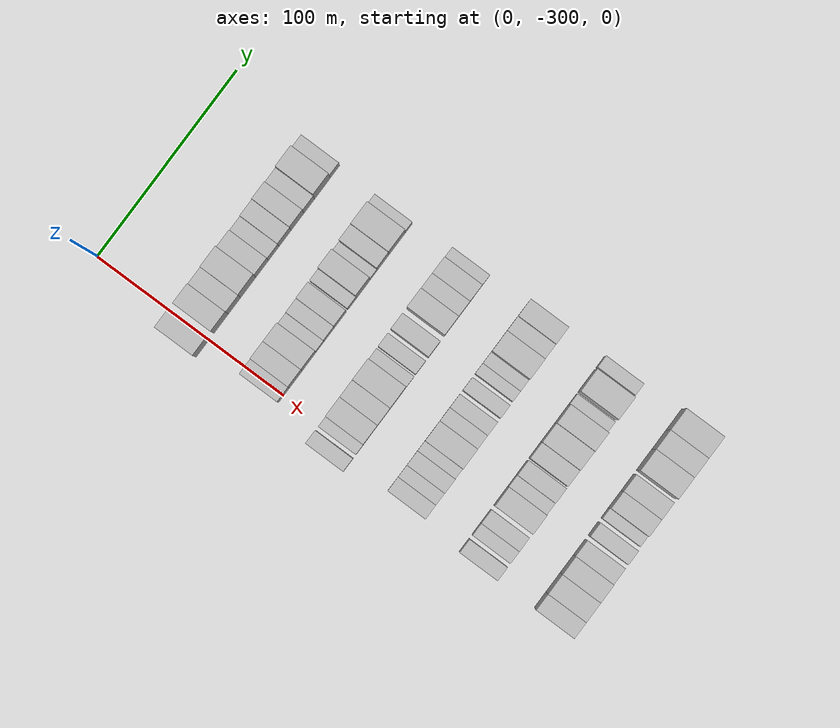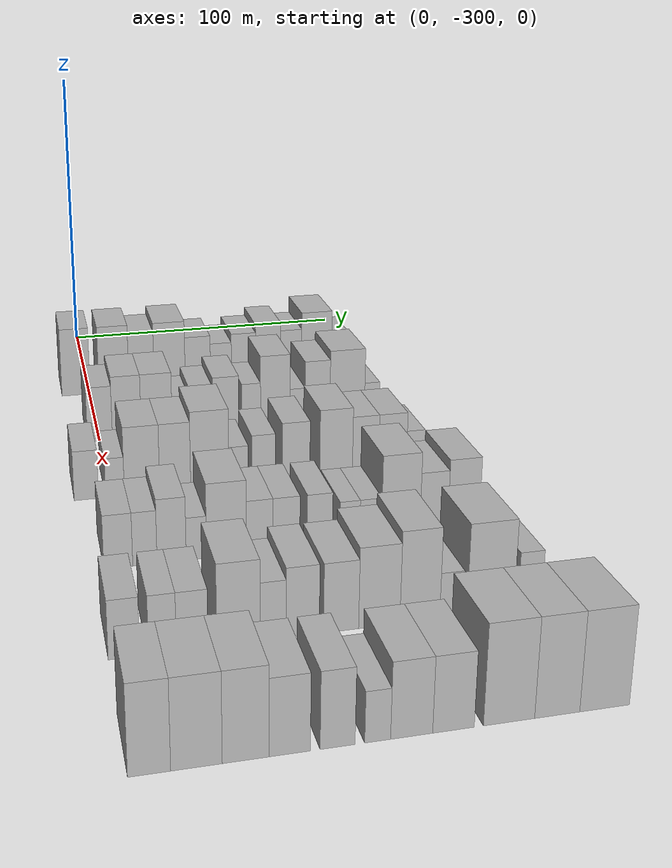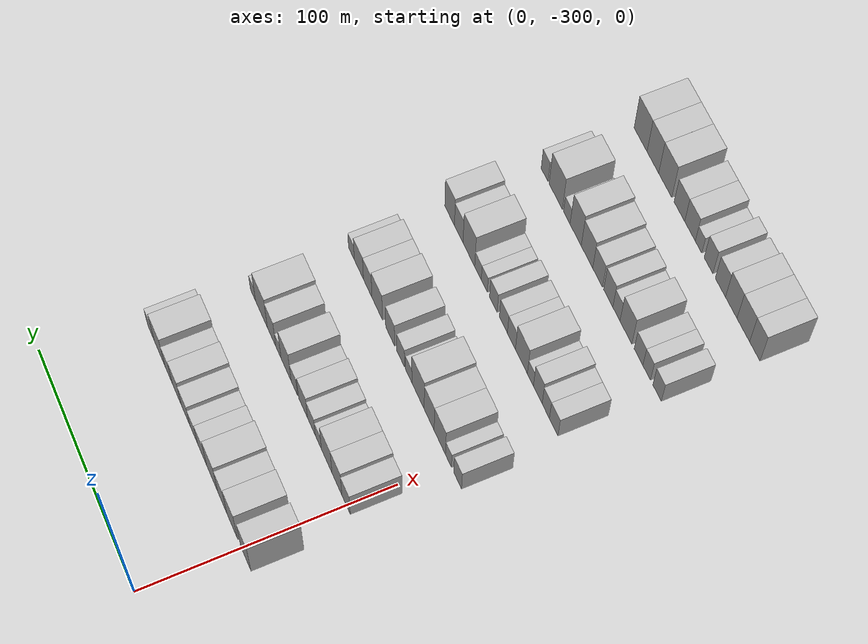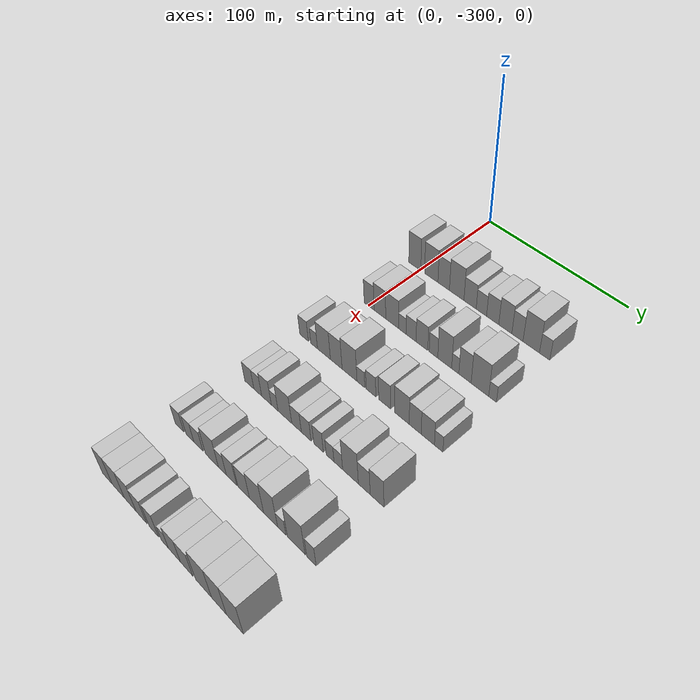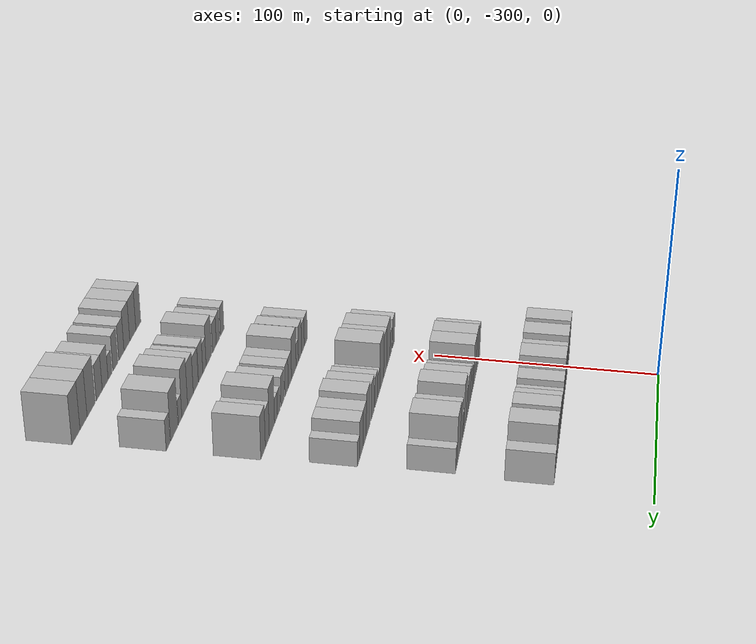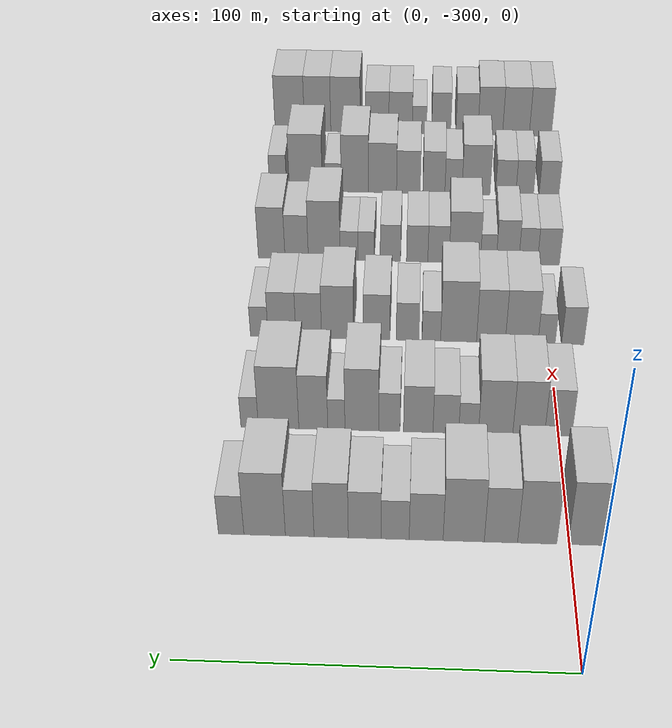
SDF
<sdf version="1.6">
 <world name="default">
  <model name="building_38">
   <static>1</static>
   <pose>50.0000 -304.3911 0 0.000000 0.000000 0.000000</pose>
   <link name="link">
    <pose>0 0 12.00 0 0 0</pose>
    <collision name="collision"><geometry><box><size>20.0000 9.6716 24.0000</size></box></geometry></collision>
    <visual name="visual">
     <cast_shadows>0</cast_shadows>
     <geometry><box><size>20.0000 9.6716 24.0000</size></box></geometry>
     <material>
      <script>
       <uri>model://HANNAS_wall/materials/scripts</uri>
       <uri>model://HANNAS_wall/materials/textures</uri>
       <name>vrc/HANNAS_wall</name>
      </script>
     </material>
    </visual>
   </link>
  </model>
  <model name="building_39">
   <static>1</static>
   <pose>50.0000 -291.3712 0 0.000000 0.000000 0.000000</pose>
   <link name="link">
    <pose>0 0 12.00 0 0 0</pose>
    <collision name="collision"><geometry><box><size>20.0000 10.3682 24.0000</size></box></geometry></collision>
    <visual name="visual">
     <cast_shadows>0</cast_shadows>
     <geometry><box><size>20.0000 10.3682 24.0000</size></box></geometry>
     <material>
      <script>
       <uri>model://HANNAS_wall/materials/scripts</uri>
       <uri>model://HANNAS_wall/materials/textures</uri>
       <name>vrc/HANNAS_wall</name>
      </script>
     </material>
    </visual>
   </link>
  </model>
  <model name="building_40">
   <static>1</static>
   <pose>50.0000 -281.7847 0 0.000000 0.000000 0.000000</pose>
   <link name="link">
    <pose>0 0 10.50 0 0 0</pose>
    <collision name="collision"><geometry><box><size>20.0000 8.8048 21.0000</size></box></geometry></collision>
    <visual name="visual">
     <cast_shadows>0</cast_shadows>
     <geometry><box><size>20.0000 8.8048 21.0000</size></box></geometry>
     <material>
      <script>
       <uri>model://HANNAS_wall/materials/scripts</uri>
       <uri>model://HANNAS_wall/materials/textures</uri>
       <name>vrc/HANNAS_wall</name>
      </script>
     </material>
    </visual>
   </link>
  </model>
  <model name="building_41">
   <static>1</static>
   <pose>50.0000 -271.9253 0 0.000000 0.000000 0.000000</pose>
   <link name="link">
    <pose>0 0 12.00 0 0 0</pose>
    <collision name="collision"><geometry><box><size>20.0000 10.9142 24.0000</size></box></geometry></collision>
    <visual name="visual">
     <cast_shadows>0</cast_shadows>
     <geometry><box><size>20.0000 10.9142 24.0000</size></box></geometry>
     <material>
      <script>
       <uri>model://HANNAS_wall/materials/scripts</uri>
       <uri>model://HANNAS_wall/materials/textures</uri>
       <name>vrc/HANNAS_wall</name>
      </script>
     </material>
    </visual>
   </link>
  </model>
  <model name="building_42">
   <static>1</static>
   <pose>50.0000 -261.9698 0 0.000000 0.000000 0.000000</pose>
   <link name="link">
    <pose>0 0 9.00 0 0 0</pose>
    <collision name="collision"><geometry><box><size>20.0000 8.9967 18.0000</size></box></geometry></collision>
    <visual name="visual">
     <cast_shadows>0</cast_shadows>
     <geometry><box><size>20.0000 8.9967 18.0000</size></box></geometry>
     <material>
      <script>
       <uri>model://HANNAS_wall/materials/scripts</uri>
       <uri>model://HANNAS_wall/materials/textures</uri>
       <name>vrc/HANNAS_wall</name>
      </script>
     </material>
    </visual>
   </link>
  </model>
  <model name="building_43">
   <static>1</static>
   <pose>50.0000 -253.7256 0 0.000000 0.000000 0.000000</pose>
   <link name="link">
    <pose>0 0 7.50 0 0 0</pose>
    <collision name="collision"><geometry><box><size>20.0000 7.4918 15.0000</size></box></geometry></collision>
    <visual name="visual">
     <cast_shadows>0</cast_shadows>
     <geometry><box><size>20.0000 7.4918 15.0000</size></box></geometry>
     <material>
      <script>
       <uri>model://HANNAS_wall/materials/scripts</uri>
       <uri>model://HANNAS_wall/materials/textures</uri>
       <name>vrc/HANNAS_wall</name>
      </script>
     </material>
    </visual>
   </link>
  </model>
  <model name="building_44">
   <static>1</static>
   <pose>50.0000 -245.6407 0 0.000000 0.000000 0.000000</pose>
   <link name="link">
    <pose>0 0 9.00 0 0 0</pose>
    <collision name="collision"><geometry><box><size>20.0000 8.6780 18.0000</size></box></geometry></collision>
    <visual name="visual">
     <cast_shadows>0</cast_shadows>
     <geometry><box><size>20.0000 8.6780 18.0000</size></box></geometry>
     <material>
      <script>
       <uri>model://HANNAS_wall/materials/scripts</uri>
       <uri>model://HANNAS_wall/materials/textures</uri>
       <name>vrc/HANNAS_wall</name>
      </script>
     </material>
    </visual>
   </link>
  </model>
  <model name="building_45">
   <static>1</static>
   <pose>50.0000 -236.7338 0 0.000000 0.000000 0.000000</pose>
   <link name="link">
    <pose>0 0 10.50 0 0 0</pose>
    <collision name="collision"><geometry><box><size>20.0000 9.1357 21.0000</size></box></geometry></collision>
    <visual name="visual">
     <cast_shadows>0</cast_shadows>
     <geometry><box><size>20.0000 9.1357 21.0000</size></box></geometry>
     <material>
      <script>
       <uri>model://HANNAS_wall/materials/scripts</uri>
       <uri>model://HANNAS_wall/materials/textures</uri>
       <name>vrc/HANNAS_wall</name>
      </script>
     </material>
    </visual>
   </link>
  </model>
  <model name="building_46">
   <static>1</static>
   <pose>50.0000 -228.3453 0 0.000000 0.000000 0.000000</pose>
   <link name="link">
    <pose>0 0 9.00 0 0 0</pose>
    <collision name="collision"><geometry><box><size>20.0000 7.6412 18.0000</size></box></geometry></collision>
    <visual name="visual">
     <cast_shadows>0</cast_shadows>
     <geometry><box><size>20.0000 7.6412 18.0000</size></box></geometry>
     <material>
      <script>
       <uri>model://HANNAS_wall/materials/scripts</uri>
       <uri>model://HANNAS_wall/materials/textures</uri>
       <name>vrc/HANNAS_wall</name>
      </script>
     </material>
    </visual>
   </link>
  </model>
  <model name="building_47">
   <static>1</static>
   <pose>50.0000 -218.9849 0 0.000000 0.000000 0.000000</pose>
   <link name="link">
    <pose>0 0 12.00 0 0 0</pose>
    <collision name="collision"><geometry><box><size>20.0000 11.0797 24.0000</size></box></geometry></collision>
    <visual name="visual">
     <cast_shadows>0</cast_shadows>
     <geometry><box><size>20.0000 11.0797 24.0000</size></box></geometry>
     <material>
      <script>
       <uri>model://HANNAS_wall/materials/scripts</uri>
       <uri>model://HANNAS_wall/materials/textures</uri>
       <name>vrc/HANNAS_wall</name>
      </script>
     </material>
    </visual>
   </link>
  </model>
  <model name="building_48">
   <static>1</static>
   <pose>50.0000 -210.0393 0 0.000000 0.000000 0.000000</pose>
   <link name="link">
    <pose>0 0 7.50 0 0 0</pose>
    <collision name="collision"><geometry><box><size>20.0000 6.8115 15.0000</size></box></geometry></collision>
    <visual name="visual">
     <cast_shadows>0</cast_shadows>
     <geometry><box><size>20.0000 6.8115 15.0000</size></box></geometry>
     <material>
      <script>
       <uri>model://HANNAS_wall/materials/scripts</uri>
       <uri>model://HANNAS_wall/materials/textures</uri>
       <name>vrc/HANNAS_wall</name>
      </script>
     </material>
    </visual>
   </link>
  </model>
  <model name="building_175">
   <static>1</static>
   <pose>90.0000 -299.7310 0 0.000000 0.000000 0.000000</pose>
   <link name="link">
    <pose>0 0 9.00 0 0 0</pose>
    <collision name="collision"><geometry><box><size>20.0000 7.8272 18.0000</size></box></geometry></collision>
    <visual name="visual">
     <cast_shadows>0</cast_shadows>
     <geometry><box><size>20.0000 7.8272 18.0000</size></box></geometry>
     <material>
      <script>
       <uri>model://HANNAS_wall/materials/scripts</uri>
       <uri>model://HANNAS_wall/materials/textures</uri>
       <name>vrc/HANNAS_wall</name>
      </script>
     </material>
    </visual>
   </link>
  </model>
  <model name="building_176">
   <static>1</static>
   <pose>90.0000 -291.2450 0 0.000000 0.000000 0.000000</pose>
   <link name="link">
    <pose>0 0 10.50 0 0 0</pose>
    <collision name="collision"><geometry><box><size>20.0000 9.1448 21.0000</size></box></geometry></collision>
    <visual name="visual">
     <cast_shadows>0</cast_shadows>
     <geometry><box><size>20.0000 9.1448 21.0000</size></box></geometry>
     <material>
      <script>
       <uri>model://HANNAS_wall/materials/scripts</uri>
       <uri>model://HANNAS_wall/materials/textures</uri>
       <name>vrc/HANNAS_wall</name>
      </script>
     </material>
    </visual>
   </link>
  </model>
  <model name="building_177">
   <static>1</static>
   <pose>90.0000 -281.7317 0 0.000000 0.000000 0.000000</pose>
   <link name="link">
    <pose>0 0 10.50 0 0 0</pose>
    <collision name="collision"><geometry><box><size>20.0000 9.8818 21.0000</size></box></geometry></collision>
    <visual name="visual">
     <cast_shadows>0</cast_shadows>
     <geometry><box><size>20.0000 9.8818 21.0000</size></box></geometry>
     <material>
      <script>
       <uri>model://HANNAS_wall/materials/scripts</uri>
       <uri>model://HANNAS_wall/materials/textures</uri>
       <name>vrc/HANNAS_wall</name>
      </script>
     </material>
    </visual>
   </link>
  </model>
  <model name="building_178">
   <static>1</static>
   <pose>90.0000 -273.9467 0 0.000000 0.000000 0.000000</pose>
   <link name="link">
    <pose>0 0 6.00 0 0 0</pose>
    <collision name="collision"><geometry><box><size>20.0000 5.6880 12.0000</size></box></geometry></collision>
    <visual name="visual">
     <cast_shadows>0</cast_shadows>
     <geometry><box><size>20.0000 5.6880 12.0000</size></box></geometry>
     <material>
      <script>
       <uri>model://HANNAS_wall/materials/scripts</uri>
       <uri>model://HANNAS_wall/materials/textures</uri>
       <name>vrc/HANNAS_wall</name>
      </script>
     </material>
    </visual>
   </link>
  </model>
  <model name="building_179">
   <static>1</static>
   <pose>90.0000 -267.3856 0 0.000000 0.000000 0.000000</pose>
   <link name="link">
    <pose>0 0 7.50 0 0 0</pose>
    <collision name="collision"><geometry><box><size>20.0000 7.4343 15.0000</size></box></geometry></collision>
    <visual name="visual">
     <cast_shadows>0</cast_shadows>
     <geometry><box><size>20.0000 7.4343 15.0000</size></box></geometry>
     <material>
      <script>
       <uri>model://HANNAS_wall/materials/scripts</uri>
       <uri>model://HANNAS_wall/materials/textures</uri>
       <name>vrc/HANNAS_wall</name>
      </script>
     </material>
    </visual>
   </link>
  </model>
  <model name="building_180">
   <static>1</static>
   <pose>90.0000 -259.4075 0 0.000000 0.000000 0.000000</pose>
   <link name="link">
    <pose>0 0 9.00 0 0 0</pose>
    <collision name="collision"><geometry><box><size>20.0000 8.5219 18.0000</size></box></geometry></collision>
    <visual name="visual">
     <cast_shadows>0</cast_shadows>
     <geometry><box><size>20.0000 8.5219 18.0000</size></box></geometry>
     <material>
      <script>
       <uri>model://HANNAS_wall/materials/scripts</uri>
       <uri>model://HANNAS_wall/materials/textures</uri>
       <name>vrc/HANNAS_wall</name>
      </script>
     </material>
    </visual>
   </link>
  </model>
  <model name="building_181">
   <static>1</static>
   <pose>90.0000 -251.0764 0 0.000000 0.000000 0.000000</pose>
   <link name="link">
    <pose>0 0 7.50 0 0 0</pose>
    <collision name="collision"><geometry><box><size>20.0000 6.1403 15.0000</size></box></geometry></collision>
    <visual name="visual">
     <cast_shadows>0</cast_shadows>
     <geometry><box><size>20.0000 6.1403 15.0000</size></box></geometry>
     <material>
      <script>
       <uri>model://HANNAS_wall/materials/scripts</uri>
       <uri>model://HANNAS_wall/materials/textures</uri>
       <name>vrc/HANNAS_wall</name>
      </script>
     </material>
    </visual>
   </link>
  </model>
  <model name="building_182">
   <static>1</static>
   <pose>90.0000 -243.1104 0 0.000000 0.000000 0.000000</pose>
   <link name="link">
    <pose>0 0 12.00 0 0 0</pose>
    <collision name="collision"><geometry><box><size>20.0000 9.7917 24.0000</size></box></geometry></collision>
    <visual name="visual">
     <cast_shadows>0</cast_shadows>
     <geometry><box><size>20.0000 9.7917 24.0000</size></box></geometry>
     <material>
      <script>
       <uri>model://HANNAS_wall/materials/scripts</uri>
       <uri>model://HANNAS_wall/materials/textures</uri>
       <name>vrc/HANNAS_wall</name>
      </script>
     </material>
    </visual>
   </link>
  </model>
  <model name="building_183">
   <static>1</static>
   <pose>90.0000 -235.7270 0 0.000000 0.000000 0.000000</pose>
   <link name="link">
    <pose>0 0 6.00 0 0 0</pose>
    <collision name="collision"><geometry><box><size>20.0000 4.9750 12.0000</size></box></geometry></collision>
    <visual name="visual">
     <cast_shadows>0</cast_shadows>
     <geometry><box><size>20.0000 4.9750 12.0000</size></box></geometry>
     <material>
      <script>
       <uri>model://HANNAS_wall/materials/scripts</uri>
       <uri>model://HANNAS_wall/materials/textures</uri>
       <name>vrc/HANNAS_wall</name>
      </script>
     </material>
    </visual>
   </link>
  </model>
  <model name="building_184">
   <static>1</static>
   <pose>90.0000 -229.0378 0 0.000000 0.000000 0.000000</pose>
   <link name="link">
    <pose>0 0 10.50 0 0 0</pose>
    <collision name="collision"><geometry><box><size>20.0000 8.4035 21.0000</size></box></geometry></collision>
    <visual name="visual">
     <cast_shadows>0</cast_shadows>
     <geometry><box><size>20.0000 8.4035 21.0000</size></box></geometry>
     <material>
      <script>
       <uri>model://HANNAS_wall/materials/scripts</uri>
       <uri>model://HANNAS_wall/materials/textures</uri>
       <name>vrc/HANNAS_wall</name>
      </script>
     </material>
    </visual>
   </link>
  </model>
  <model name="building_185">
   <static>1</static>
   <pose>90.0000 -218.9596 0 0.000000 0.000000 0.000000</pose>
   <link name="link">
    <pose>0 0 12.00 0 0 0</pose>
    <collision name="collision"><geometry><box><size>20.0000 11.7528 24.0000</size></box></geometry></collision>
    <visual name="visual">
     <cast_shadows>0</cast_shadows>
     <geometry><box><size>20.0000 11.7528 24.0000</size></box></geometry>
     <material>
      <script>
       <uri>model://HANNAS_wall/materials/scripts</uri>
       <uri>model://HANNAS_wall/materials/textures</uri>
       <name>vrc/HANNAS_wall</name>
      </script>
     </material>
    </visual>
   </link>
  </model>
  <model name="building_186">
   <static>1</static>
   <pose>90.0000 -210.5400 0 0.000000 0.000000 0.000000</pose>
   <link name="link">
    <pose>0 0 6.00 0 0 0</pose>
    <collision name="collision"><geometry><box><size>20.0000 5.0864 12.0000</size></box></geometry></collision>
    <visual name="visual">
     <cast_shadows>0</cast_shadows>
     <geometry><box><size>20.0000 5.0864 12.0000</size></box></geometry>
     <material>
      <script>
       <uri>model://HANNAS_wall/materials/scripts</uri>
       <uri>model://HANNAS_wall/materials/textures</uri>
       <name>vrc/HANNAS_wall</name>
      </script>
     </material>
    </visual>
   </link>
  </model>
  <model name="building_316">
   <static>1</static>
   <pose>130.0000 -307.0605 0 0.000000 0.000000 0.000000</pose>
   <link name="link">
    <pose>0 0 7.50 0 0 0</pose>
    <collision name="collision"><geometry><box><size>20.0000 6.9104 15.0000</size></box></geometry></collision>
    <visual name="visual">
     <cast_shadows>0</cast_shadows>
     <geometry><box><size>20.0000 6.9104 15.0000</size></box></geometry>
     <material>
      <script>
       <uri>model://HANNAS_wall/materials/scripts</uri>
       <uri>model://HANNAS_wall/materials/textures</uri>
       <name>vrc/HANNAS_wall</name>
      </script>
     </material>
    </visual>
   </link>
  </model>
  <model name="building_317">
   <static>1</static>
   <pose>130.0000 -298.9399 0 0.000000 0.000000 0.000000</pose>
   <link name="link">
    <pose>0 0 6.00 0 0 0</pose>
    <collision name="collision"><geometry><box><size>20.0000 5.3309 12.0000</size></box></geometry></collision>
    <visual name="visual">
     <cast_shadows>0</cast_shadows>
     <geometry><box><size>20.0000 5.3309 12.0000</size></box></geometry>
     <material>
      <script>
       <uri>model://HANNAS_wall/materials/scripts</uri>
       <uri>model://HANNAS_wall/materials/textures</uri>
       <name>vrc/HANNAS_wall</name>
      </script>
     </material>
    </visual>
   </link>
  </model>
  <model name="building_318">
   <static>1</static>
   <pose>130.0000 -291.1976 0 0.000000 0.000000 0.000000</pose>
   <link name="link">
    <pose>0 0 10.50 0 0 0</pose>
    <collision name="collision"><geometry><box><size>20.0000 10.1537 21.0000</size></box></geometry></collision>
    <visual name="visual">
     <cast_shadows>0</cast_shadows>
     <geometry><box><size>20.0000 10.1537 21.0000</size></box></geometry>
     <material>
      <script>
       <uri>model://HANNAS_wall/materials/scripts</uri>
       <uri>model://HANNAS_wall/materials/textures</uri>
       <name>vrc/HANNAS_wall</name>
      </script>
     </material>
    </visual>
   </link>
  </model>
  <model name="building_319">
   <static>1</static>
   <pose>130.0000 -281.6314 0 0.000000 0.000000 0.000000</pose>
   <link name="link">
    <pose>0 0 10.50 0 0 0</pose>
    <collision name="collision"><geometry><box><size>20.0000 8.9788 21.0000</size></box></geometry></collision>
    <visual name="visual">
     <cast_shadows>0</cast_shadows>
     <geometry><box><size>20.0000 8.9788 21.0000</size></box></geometry>
     <material>
      <script>
       <uri>model://HANNAS_wall/materials/scripts</uri>
       <uri>model://HANNAS_wall/materials/textures</uri>
       <name>vrc/HANNAS_wall</name>
      </script>
     </material>
    </visual>
   </link>
  </model>
  <model name="building_320">
   <static>1</static>
   <pose>130.0000 -271.5308 0 0.000000 0.000000 0.000000</pose>
   <link name="link">
    <pose>0 0 12.00 0 0 0</pose>
    <collision name="collision"><geometry><box><size>20.0000 11.2224 24.0000</size></box></geometry></collision>
    <visual name="visual">
     <cast_shadows>0</cast_shadows>
     <geometry><box><size>20.0000 11.2224 24.0000</size></box></geometry>
     <material>
      <script>
       <uri>model://HANNAS_wall/materials/scripts</uri>
       <uri>model://HANNAS_wall/materials/textures</uri>
       <name>vrc/HANNAS_wall</name>
      </script>
     </material>
    </visual>
   </link>
  </model>
  <model name="building_321">
   <static>1</static>
   <pose>130.0000 -263.0337 0 0.000000 0.000000 0.000000</pose>
   <link name="link">
    <pose>0 0 6.00 0 0 0</pose>
    <collision name="collision"><geometry><box><size>20.0000 5.7717 12.0000</size></box></geometry></collision>
    <visual name="visual">
     <cast_shadows>0</cast_shadows>
     <geometry><box><size>20.0000 5.7717 12.0000</size></box></geometry>
     <material>
      <script>
       <uri>model://HANNAS_wall/materials/scripts</uri>
       <uri>model://HANNAS_wall/materials/textures</uri>
       <name>vrc/HANNAS_wall</name>
      </script>
     </material>
    </visual>
   </link>
  </model>
  <model name="building_322">
   <static>1</static>
   <pose>130.0000 -255.6093 0 0.000000 0.000000 0.000000</pose>
   <link name="link">
    <pose>0 0 7.50 0 0 0</pose>
    <collision name="collision"><geometry><box><size>20.0000 7.0773 15.0000</size></box></geometry></collision>
    <visual name="visual">
     <cast_shadows>0</cast_shadows>
     <geometry><box><size>20.0000 7.0773 15.0000</size></box></geometry>
     <material>
      <script>
       <uri>model://HANNAS_wall/materials/scripts</uri>
       <uri>model://HANNAS_wall/materials/textures</uri>
       <name>vrc/HANNAS_wall</name>
      </script>
     </material>
    </visual>
   </link>
  </model>
  <model name="building_323">
   <static>1</static>
   <pose>130.0000 -245.8820 0 0.000000 0.000000 0.000000</pose>
   <link name="link">
    <pose>0 0 9.00 0 0 0</pose>
    <collision name="collision"><geometry><box><size>20.0000 8.3772 18.0000</size></box></geometry></collision>
    <visual name="visual">
     <cast_shadows>0</cast_shadows>
     <geometry><box><size>20.0000 8.3772 18.0000</size></box></geometry>
     <material>
      <script>
       <uri>model://HANNAS_wall/materials/scripts</uri>
       <uri>model://HANNAS_wall/materials/textures</uri>
       <name>vrc/HANNAS_wall</name>
      </script>
     </material>
    </visual>
   </link>
  </model>
  <model name="building_324">
   <static>1</static>
   <pose>130.0000 -233.6915 0 0.000000 0.000000 0.000000</pose>
   <link name="link">
    <pose>0 0 10.50 0 0 0</pose>
    <collision name="collision"><geometry><box><size>20.0000 10.0040 21.0000</size></box></geometry></collision>
    <visual name="visual">
     <cast_shadows>0</cast_shadows>
     <geometry><box><size>20.0000 10.0040 21.0000</size></box></geometry>
     <material>
      <script>
       <uri>model://HANNAS_wall/materials/scripts</uri>
       <uri>model://HANNAS_wall/materials/textures</uri>
       <name>vrc/HANNAS_wall</name>
      </script>
     </material>
    </visual>
   </link>
  </model>
  <model name="building_325">
   <static>1</static>
   <pose>130.0000 -224.6548 0 0.000000 0.000000 0.000000</pose>
   <link name="link">
    <pose>0 0 9.00 0 0 0</pose>
    <collision name="collision"><geometry><box><size>20.0000 8.0694 18.0000</size></box></geometry></collision>
    <visual name="visual">
     <cast_shadows>0</cast_shadows>
     <geometry><box><size>20.0000 8.0694 18.0000</size></box></geometry>
     <material>
      <script>
       <uri>model://HANNAS_wall/materials/scripts</uri>
       <uri>model://HANNAS_wall/materials/textures</uri>
       <name>vrc/HANNAS_wall</name>
      </script>
     </material>
    </visual>
   </link>
  </model>
  <model name="building_326">
   <static>1</static>
   <pose>130.0000 -216.2547 0 0.000000 0.000000 0.000000</pose>
   <link name="link">
    <pose>0 0 9.00 0 0 0</pose>
    <collision name="collision"><geometry><box><size>20.0000 8.7307 18.0000</size></box></geometry></collision>
    <visual name="visual">
     <cast_shadows>0</cast_shadows>
     <geometry><box><size>20.0000 8.7307 18.0000</size></box></geometry>
     <material>
      <script>
       <uri>model://HANNAS_wall/materials/scripts</uri>
       <uri>model://HANNAS_wall/materials/textures</uri>
       <name>vrc/HANNAS_wall</name>
      </script>
     </material>
    </visual>
   </link>
  </model>
  <model name="building_327">
   <static>1</static>
   <pose>130.0000 -209.1135 0 0.000000 0.000000 0.000000</pose>
   <link name="link">
    <pose>0 0 6.00 0 0 0</pose>
    <collision name="collision"><geometry><box><size>20.0000 5.5519 12.0000</size></box></geometry></collision>
    <visual name="visual">
     <cast_shadows>0</cast_shadows>
     <geometry><box><size>20.0000 5.5519 12.0000</size></box></geometry>
     <material>
      <script>
       <uri>model://HANNAS_wall/materials/scripts</uri>
       <uri>model://HANNAS_wall/materials/textures</uri>
       <name>vrc/HANNAS_wall</name>
      </script>
     </material>
    </visual>
   </link>
  </model>
  <model name="building_457">
   <static>1</static>
   <pose>170.0000 -302.0741 0 0.000000 0.000000 0.000000</pose>
   <link name="link">
    <pose>0 0 7.50 0 0 0</pose>
    <collision name="collision"><geometry><box><size>20.0000 7.3687 15.0000</size></box></geometry></collision>
    <visual name="visual">
     <cast_shadows>0</cast_shadows>
     <geometry><box><size>20.0000 7.3687 15.0000</size></box></geometry>
     <material>
      <script>
       <uri>model://HANNAS_wall/materials/scripts</uri>
       <uri>model://HANNAS_wall/materials/textures</uri>
       <name>vrc/HANNAS_wall</name>
      </script>
     </material>
    </visual>
   </link>
  </model>
  <model name="building_458">
   <static>1</static>
   <pose>170.0000 -295.2681 0 0.000000 0.000000 0.000000</pose>
   <link name="link">
    <pose>0 0 7.50 0 0 0</pose>
    <collision name="collision"><geometry><box><size>20.0000 6.2432 15.0000</size></box></geometry></collision>
    <visual name="visual">
     <cast_shadows>0</cast_shadows>
     <geometry><box><size>20.0000 6.2432 15.0000</size></box></geometry>
     <material>
      <script>
       <uri>model://HANNAS_wall/materials/scripts</uri>
       <uri>model://HANNAS_wall/materials/textures</uri>
       <name>vrc/HANNAS_wall</name>
      </script>
     </material>
    </visual>
   </link>
  </model>
  <model name="building_459">
   <static>1</static>
   <pose>170.0000 -288.3779 0 0.000000 0.000000 0.000000</pose>
   <link name="link">
    <pose>0 0 9.00 0 0 0</pose>
    <collision name="collision"><geometry><box><size>20.0000 7.5373 18.0000</size></box></geometry></collision>
    <visual name="visual">
     <cast_shadows>0</cast_shadows>
     <geometry><box><size>20.0000 7.5373 18.0000</size></box></geometry>
     <material>
      <script>
       <uri>model://HANNAS_wall/materials/scripts</uri>
       <uri>model://HANNAS_wall/materials/textures</uri>
       <name>vrc/HANNAS_wall</name>
      </script>
     </material>
    </visual>
   </link>
  </model>
  <model name="building_460">
   <static>1</static>
   <pose>170.0000 -281.9657 0 0.000000 0.000000 0.000000</pose>
   <link name="link">
    <pose>0 0 6.00 0 0 0</pose>
    <collision name="collision"><geometry><box><size>20.0000 5.2870 12.0000</size></box></geometry></collision>
    <visual name="visual">
     <cast_shadows>0</cast_shadows>
     <geometry><box><size>20.0000 5.2870 12.0000</size></box></geometry>
     <material>
      <script>
       <uri>model://HANNAS_wall/materials/scripts</uri>
       <uri>model://HANNAS_wall/materials/textures</uri>
       <name>vrc/HANNAS_wall</name>
      </script>
     </material>
    </visual>
   </link>
  </model>
  <model name="building_461">
   <static>1</static>
   <pose>170.0000 -274.0738 0 0.000000 0.000000 0.000000</pose>
   <link name="link">
    <pose>0 0 10.50 0 0 0</pose>
    <collision name="collision"><geometry><box><size>20.0000 10.4968 21.0000</size></box></geometry></collision>
    <visual name="visual">
     <cast_shadows>0</cast_shadows>
     <geometry><box><size>20.0000 10.4968 21.0000</size></box></geometry>
     <material>
      <script>
       <uri>model://HANNAS_wall/materials/scripts</uri>
       <uri>model://HANNAS_wall/materials/textures</uri>
       <name>vrc/HANNAS_wall</name>
      </script>
     </material>
    </visual>
   </link>
  </model>
  <model name="building_462">
   <static>1</static>
   <pose>170.0000 -265.2600 0 0.000000 0.000000 0.000000</pose>
   <link name="link">
    <pose>0 0 7.50 0 0 0</pose>
    <collision name="collision"><geometry><box><size>20.0000 7.1308 15.0000</size></box></geometry></collision>
    <visual name="visual">
     <cast_shadows>0</cast_shadows>
     <geometry><box><size>20.0000 7.1308 15.0000</size></box></geometry>
     <material>
      <script>
       <uri>model://HANNAS_wall/materials/scripts</uri>
       <uri>model://HANNAS_wall/materials/textures</uri>
       <name>vrc/HANNAS_wall</name>
      </script>
     </material>
    </visual>
   </link>
  </model>
  <model name="building_463">
   <static>1</static>
   <pose>170.0000 -258.1174 0 0.000000 0.000000 0.000000</pose>
   <link name="link">
    <pose>0 0 7.50 0 0 0</pose>
    <collision name="collision"><geometry><box><size>20.0000 7.1545 15.0000</size></box></geometry></collision>
    <visual name="visual">
     <cast_shadows>0</cast_shadows>
     <geometry><box><size>20.0000 7.1545 15.0000</size></box></geometry>
     <material>
      <script>
       <uri>model://HANNAS_wall/materials/scripts</uri>
       <uri>model://HANNAS_wall/materials/textures</uri>
       <name>vrc/HANNAS_wall</name>
      </script>
     </material>
    </visual>
   </link>
  </model>
  <model name="building_464">
   <static>1</static>
   <pose>170.0000 -249.1169 0 0.000000 0.000000 0.000000</pose>
   <link name="link">
    <pose>0 0 7.50 0 0 0</pose>
    <collision name="collision"><geometry><box><size>20.0000 6.8464 15.0000</size></box></geometry></collision>
    <visual name="visual">
     <cast_shadows>0</cast_shadows>
     <geometry><box><size>20.0000 6.8464 15.0000</size></box></geometry>
     <material>
      <script>
       <uri>model://HANNAS_wall/materials/scripts</uri>
       <uri>model://HANNAS_wall/materials/textures</uri>
       <name>vrc/HANNAS_wall</name>
      </script>
     </material>
    </visual>
   </link>
  </model>
  <model name="building_465">
   <static>1</static>
   <pose>170.0000 -240.9414 0 0.000000 0.000000 0.000000</pose>
   <link name="link">
    <pose>0 0 6.00 0 0 0</pose>
    <collision name="collision"><geometry><box><size>20.0000 5.5046 12.0000</size></box></geometry></collision>
    <visual name="visual">
     <cast_shadows>0</cast_shadows>
     <geometry><box><size>20.0000 5.5046 12.0000</size></box></geometry>
     <material>
      <script>
       <uri>model://HANNAS_wall/materials/scripts</uri>
       <uri>model://HANNAS_wall/materials/textures</uri>
       <name>vrc/HANNAS_wall</name>
      </script>
     </material>
    </visual>
   </link>
  </model>
  <model name="building_466">
   <static>1</static>
   <pose>170.0000 -235.2036 0 0.000000 0.000000 0.000000</pose>
   <link name="link">
    <pose>0 0 6.00 0 0 0</pose>
    <collision name="collision"><geometry><box><size>20.0000 5.9710 12.0000</size></box></geometry></collision>
    <visual name="visual">
     <cast_shadows>0</cast_shadows>
     <geometry><box><size>20.0000 5.9710 12.0000</size></box></geometry>
     <material>
      <script>
       <uri>model://HANNAS_wall/materials/scripts</uri>
       <uri>model://HANNAS_wall/materials/textures</uri>
       <name>vrc/HANNAS_wall</name>
      </script>
     </material>
    </visual>
   </link>
  </model>
  <model name="building_467">
   <static>1</static>
   <pose>170.0000 -226.8412 0 0.000000 0.000000 0.000000</pose>
   <link name="link">
    <pose>0 0 12.00 0 0 0</pose>
    <collision name="collision"><geometry><box><size>20.0000 10.7540 24.0000</size></box></geometry></collision>
    <visual name="visual">
     <cast_shadows>0</cast_shadows>
     <geometry><box><size>20.0000 10.7540 24.0000</size></box></geometry>
     <material>
      <script>
       <uri>model://HANNAS_wall/materials/scripts</uri>
       <uri>model://HANNAS_wall/materials/textures</uri>
       <name>vrc/HANNAS_wall</name>
      </script>
     </material>
    </visual>
   </link>
  </model>
  <model name="building_468">
   <static>1</static>
   <pose>170.0000 -217.5214 0 0.000000 0.000000 0.000000</pose>
   <link name="link">
    <pose>0 0 9.00 0 0 0</pose>
    <collision name="collision"><geometry><box><size>20.0000 7.8854 18.0000</size></box></geometry></collision>
    <visual name="visual">
     <cast_shadows>0</cast_shadows>
     <geometry><box><size>20.0000 7.8854 18.0000</size></box></geometry>
     <material>
      <script>
       <uri>model://HANNAS_wall/materials/scripts</uri>
       <uri>model://HANNAS_wall/materials/textures</uri>
       <name>vrc/HANNAS_wall</name>
      </script>
     </material>
    </visual>
   </link>
  </model>
  <model name="building_469">
   <static>1</static>
   <pose>170.0000 -209.0883 0 0.000000 0.000000 0.000000</pose>
   <link name="link">
    <pose>0 0 10.50 0 0 0</pose>
    <collision name="collision"><geometry><box><size>20.0000 8.9808 21.0000</size></box></geometry></collision>
    <visual name="visual">
     <cast_shadows>0</cast_shadows>
     <geometry><box><size>20.0000 8.9808 21.0000</size></box></geometry>
     <material>
      <script>
       <uri>model://HANNAS_wall/materials/scripts</uri>
       <uri>model://HANNAS_wall/materials/textures</uri>
       <name>vrc/HANNAS_wall</name>
      </script>
     </material>
    </visual>
   </link>
  </model>
  <model name="building_608">
   <static>1</static>
   <pose>210.0000 -304.8605 0 0.000000 0.000000 0.000000</pose>
   <link name="link">
    <pose>0 0 7.50 0 0 0</pose>
    <collision name="collision"><geometry><box><size>20.0000 7.0506 15.0000</size></box></geometry></collision>
    <visual name="visual">
     <cast_shadows>0</cast_shadows>
     <geometry><box><size>20.0000 7.0506 15.0000</size></box></geometry>
     <material>
      <script>
       <uri>model://HANNAS_wall/materials/scripts</uri>
       <uri>model://HANNAS_wall/materials/textures</uri>
       <name>vrc/HANNAS_wall</name>
      </script>
     </material>
    </visual>
   </link>
  </model>
  <model name="building_609">
   <static>1</static>
   <pose>210.0000 -296.1837 0 0.000000 0.000000 0.000000</pose>
   <link name="link">
    <pose>0 0 7.50 0 0 0</pose>
    <collision name="collision"><geometry><box><size>20.0000 6.3029 15.0000</size></box></geometry></collision>
    <visual name="visual">
     <cast_shadows>0</cast_shadows>
     <geometry><box><size>20.0000 6.3029 15.0000</size></box></geometry>
     <material>
      <script>
       <uri>model://HANNAS_wall/materials/scripts</uri>
       <uri>model://HANNAS_wall/materials/textures</uri>
       <name>vrc/HANNAS_wall</name>
      </script>
     </material>
    </visual>
   </link>
  </model>
  <model name="building_610">
   <static>1</static>
   <pose>210.0000 -289.3976 0 0.000000 0.000000 0.000000</pose>
   <link name="link">
    <pose>0 0 7.50 0 0 0</pose>
    <collision name="collision"><geometry><box><size>20.0000 7.2693 15.0000</size></box></geometry></collision>
    <visual name="visual">
     <cast_shadows>0</cast_shadows>
     <geometry><box><size>20.0000 7.2693 15.0000</size></box></geometry>
     <material>
      <script>
       <uri>model://HANNAS_wall/materials/scripts</uri>
       <uri>model://HANNAS_wall/materials/textures</uri>
       <name>vrc/HANNAS_wall</name>
      </script>
     </material>
    </visual>
   </link>
  </model>
  <model name="building_611">
   <static>1</static>
   <pose>210.0000 -278.7202 0 0.000000 0.000000 0.000000</pose>
   <link name="link">
    <pose>0 0 10.50 0 0 0</pose>
    <collision name="collision"><geometry><box><size>20.0000 10.0854 21.0000</size></box></geometry></collision>
    <visual name="visual">
     <cast_shadows>0</cast_shadows>
     <geometry><box><size>20.0000 10.0854 21.0000</size></box></geometry>
     <material>
      <script>
       <uri>model://HANNAS_wall/materials/scripts</uri>
       <uri>model://HANNAS_wall/materials/textures</uri>
       <name>vrc/HANNAS_wall</name>
      </script>
     </material>
    </visual>
   </link>
  </model>
  <model name="building_612">
   <static>1</static>
   <pose>210.0000 -270.6236 0 0.000000 0.000000 0.000000</pose>
   <link name="link">
    <pose>0 0 7.50 0 0 0</pose>
    <collision name="collision"><geometry><box><size>20.0000 6.1079 15.0000</size></box></geometry></collision>
    <visual name="visual">
     <cast_shadows>0</cast_shadows>
     <geometry><box><size>20.0000 6.1079 15.0000</size></box></geometry>
     <material>
      <script>
       <uri>model://HANNAS_wall/materials/scripts</uri>
       <uri>model://HANNAS_wall/materials/textures</uri>
       <name>vrc/HANNAS_wall</name>
      </script>
     </material>
    </visual>
   </link>
  </model>
  <model name="building_613">
   <static>1</static>
   <pose>210.0000 -263.6277 0 0.000000 0.000000 0.000000</pose>
   <link name="link">
    <pose>0 0 9.00 0 0 0</pose>
    <collision name="collision"><geometry><box><size>20.0000 7.8839 18.0000</size></box></geometry></collision>
    <visual name="visual">
     <cast_shadows>0</cast_shadows>
     <geometry><box><size>20.0000 7.8839 18.0000</size></box></geometry>
     <material>
      <script>
       <uri>model://HANNAS_wall/materials/scripts</uri>
       <uri>model://HANNAS_wall/materials/textures</uri>
       <name>vrc/HANNAS_wall</name>
      </script>
     </material>
    </visual>
   </link>
  </model>
  <model name="building_614">
   <static>1</static>
   <pose>210.0000 -254.4516 0 0.000000 0.000000 0.000000</pose>
   <link name="link">
    <pose>0 0 9.00 0 0 0</pose>
    <collision name="collision"><geometry><box><size>20.0000 8.4683 18.0000</size></box></geometry></collision>
    <visual name="visual">
     <cast_shadows>0</cast_shadows>
     <geometry><box><size>20.0000 8.4683 18.0000</size></box></geometry>
     <material>
      <script>
       <uri>model://HANNAS_wall/materials/scripts</uri>
       <uri>model://HANNAS_wall/materials/textures</uri>
       <name>vrc/HANNAS_wall</name>
      </script>
     </material>
    </visual>
   </link>
  </model>
  <model name="building_615">
   <static>1</static>
   <pose>210.0000 -245.1786 0 0.000000 0.000000 0.000000</pose>
   <link name="link">
    <pose>0 0 10.50 0 0 0</pose>
    <collision name="collision"><geometry><box><size>20.0000 10.0775 21.0000</size></box></geometry></collision>
    <visual name="visual">
     <cast_shadows>0</cast_shadows>
     <geometry><box><size>20.0000 10.0775 21.0000</size></box></geometry>
     <material>
      <script>
       <uri>model://HANNAS_wall/materials/scripts</uri>
       <uri>model://HANNAS_wall/materials/textures</uri>
       <name>vrc/HANNAS_wall</name>
      </script>
     </material>
    </visual>
   </link>
  </model>
  <model name="building_616">
   <static>1</static>
   <pose>210.0000 -235.2186 0 0.000000 0.000000 0.000000</pose>
   <link name="link">
    <pose>0 0 12.00 0 0 0</pose>
    <collision name="collision"><geometry><box><size>20.0000 9.8426 24.0000</size></box></geometry></collision>
    <visual name="visual">
     <cast_shadows>0</cast_shadows>
     <geometry><box><size>20.0000 9.8426 24.0000</size></box></geometry>
     <material>
      <script>
       <uri>model://HANNAS_wall/materials/scripts</uri>
       <uri>model://HANNAS_wall/materials/textures</uri>
       <name>vrc/HANNAS_wall</name>
      </script>
     </material>
    </visual>
   </link>
  </model>
  <model name="building_617">
   <static>1</static>
   <pose>210.0000 -227.3955 0 0.000000 0.000000 0.000000</pose>
   <link name="link">
    <pose>0 0 6.00 0 0 0</pose>
    <collision name="collision"><geometry><box><size>20.0000 5.8036 12.0000</size></box></geometry></collision>
    <visual name="visual">
     <cast_shadows>0</cast_shadows>
     <geometry><box><size>20.0000 5.8036 12.0000</size></box></geometry>
     <material>
      <script>
       <uri>model://HANNAS_wall/materials/scripts</uri>
       <uri>model://HANNAS_wall/materials/textures</uri>
       <name>vrc/HANNAS_wall</name>
      </script>
     </material>
    </visual>
   </link>
  </model>
  <model name="building_618">
   <static>1</static>
   <pose>210.0000 -217.5354 0 0.000000 0.000000 0.000000</pose>
   <link name="link">
    <pose>0 0 12.00 0 0 0</pose>
    <collision name="collision"><geometry><box><size>20.0000 11.9166 24.0000</size></box></geometry></collision>
    <visual name="visual">
     <cast_shadows>0</cast_shadows>
     <geometry><box><size>20.0000 11.9166 24.0000</size></box></geometry>
     <material>
      <script>
       <uri>model://HANNAS_wall/materials/scripts</uri>
       <uri>model://HANNAS_wall/materials/textures</uri>
       <name>vrc/HANNAS_wall</name>
      </script>
     </material>
    </visual>
   </link>
  </model>
  <model name="building_619">
   <static>1</static>
   <pose>210.0000 -207.5098 0 0.000000 0.000000 0.000000</pose>
   <link name="link">
    <pose>0 0 7.50 0 0 0</pose>
    <collision name="collision"><geometry><box><size>20.0000 6.1346 15.0000</size></box></geometry></collision>
    <visual name="visual">
     <cast_shadows>0</cast_shadows>
     <geometry><box><size>20.0000 6.1346 15.0000</size></box></geometry>
     <material>
      <script>
       <uri>model://HANNAS_wall/materials/scripts</uri>
       <uri>model://HANNAS_wall/materials/textures</uri>
       <name>vrc/HANNAS_wall</name>
      </script>
     </material>
    </visual>
   </link>
  </model>
  <model name="building_749">
   <static>1</static>
   <pose>250.0000 -304.2017 0 0.000000 0.000000 0.000000</pose>
   <link name="link">
    <pose>0 0 10.50 0 0 0</pose>
    <collision name="collision"><geometry><box><size>20.0000 8.4225 21.0000</size></box></geometry></collision>
    <visual name="visual">
     <cast_shadows>0</cast_shadows>
     <geometry><box><size>20.0000 8.4225 21.0000</size></box></geometry>
     <material>
      <script>
       <uri>model://HANNAS_wall/materials/scripts</uri>
       <uri>model://HANNAS_wall/materials/textures</uri>
       <name>vrc/HANNAS_wall</name>
      </script>
     </material>
    </visual>
   </link>
  </model>
  <model name="building_750">
   <static>1</static>
   <pose>250.0000 -294.8875 0 0.000000 0.000000 0.000000</pose>
   <link name="link">
    <pose>0 0 10.50 0 0 0</pose>
    <collision name="collision"><geometry><box><size>20.0000 10.2059 21.0000</size></box></geometry></collision>
    <visual name="visual">
     <cast_shadows>0</cast_shadows>
     <geometry><box><size>20.0000 10.2059 21.0000</size></box></geometry>
     <material>
      <script>
       <uri>model://HANNAS_wall/materials/scripts</uri>
       <uri>model://HANNAS_wall/materials/textures</uri>
       <name>vrc/HANNAS_wall</name>
      </script>
     </material>
    </visual>
   </link>
  </model>
  <model name="building_751">
   <static>1</static>
   <pose>250.0000 -285.0571 0 0.000000 0.000000 0.000000</pose>
   <link name="link">
    <pose>0 0 10.50 0 0 0</pose>
    <collision name="collision"><geometry><box><size>20.0000 9.4550 21.0000</size></box></geometry></collision>
    <visual name="visual">
     <cast_shadows>0</cast_shadows>
     <geometry><box><size>20.0000 9.4550 21.0000</size></box></geometry>
     <material>
      <script>
       <uri>model://HANNAS_wall/materials/scripts</uri>
       <uri>model://HANNAS_wall/materials/textures</uri>
       <name>vrc/HANNAS_wall</name>
      </script>
     </material>
    </visual>
   </link>
  </model>
  <model name="building_752">
   <static>1</static>
   <pose>250.0000 -276.1333 0 0.000000 0.000000 0.000000</pose>
   <link name="link">
    <pose>0 0 9.00 0 0 0</pose>
    <collision name="collision"><geometry><box><size>20.0000 8.3927 18.0000</size></box></geometry></collision>
    <visual name="visual">
     <cast_shadows>0</cast_shadows>
     <geometry><box><size>20.0000 8.3927 18.0000</size></box></geometry>
     <material>
      <script>
       <uri>model://HANNAS_wall/materials/scripts</uri>
       <uri>model://HANNAS_wall/materials/textures</uri>
       <name>vrc/HANNAS_wall</name>
      </script>
     </material>
    </visual>
   </link>
  </model>
  <model name="building_753">
   <static>1</static>
   <pose>250.0000 -266.3031 0 0.000000 0.000000 0.000000</pose>
   <link name="link">
    <pose>0 0 9.00 0 0 0</pose>
    <collision name="collision"><geometry><box><size>20.0000 7.2677 18.0000</size></box></geometry></collision>
    <visual name="visual">
     <cast_shadows>0</cast_shadows>
     <geometry><box><size>20.0000 7.2677 18.0000</size></box></geometry>
     <material>
      <script>
       <uri>model://HANNAS_wall/materials/scripts</uri>
       <uri>model://HANNAS_wall/materials/textures</uri>
       <name>vrc/HANNAS_wall</name>
      </script>
     </material>
    </visual>
   </link>
  </model>
  <model name="building_754">
   <static>1</static>
   <pose>250.0000 -257.9436 0 0.000000 0.000000 0.000000</pose>
   <link name="link">
    <pose>0 0 6.00 0 0 0</pose>
    <collision name="collision"><geometry><box><size>20.0000 5.4512 12.0000</size></box></geometry></collision>
    <visual name="visual">
     <cast_shadows>0</cast_shadows>
     <geometry><box><size>20.0000 5.4512 12.0000</size></box></geometry>
     <material>
      <script>
       <uri>model://HANNAS_wall/materials/scripts</uri>
       <uri>model://HANNAS_wall/materials/textures</uri>
       <name>vrc/HANNAS_wall</name>
      </script>
     </material>
    </visual>
   </link>
  </model>
  <model name="building_755">
   <static>1</static>
   <pose>250.0000 -250.7366 0 0.000000 0.000000 0.000000</pose>
   <link name="link">
    <pose>0 0 9.00 0 0 0</pose>
    <collision name="collision"><geometry><box><size>20.0000 8.9628 18.0000</size></box></geometry></collision>
    <visual name="visual">
     <cast_shadows>0</cast_shadows>
     <geometry><box><size>20.0000 8.9628 18.0000</size></box></geometry>
     <material>
      <script>
       <uri>model://HANNAS_wall/materials/scripts</uri>
       <uri>model://HANNAS_wall/materials/textures</uri>
       <name>vrc/HANNAS_wall</name>
      </script>
     </material>
    </visual>
   </link>
  </model>
  <model name="building_756">
   <static>1</static>
   <pose>250.0000 -241.7632 0 0.000000 0.000000 0.000000</pose>
   <link name="link">
    <pose>0 0 9.00 0 0 0</pose>
    <collision name="collision"><geometry><box><size>20.0000 8.9842 18.0000</size></box></geometry></collision>
    <visual name="visual">
     <cast_shadows>0</cast_shadows>
     <geometry><box><size>20.0000 8.9842 18.0000</size></box></geometry>
     <material>
      <script>
       <uri>model://HANNAS_wall/materials/scripts</uri>
       <uri>model://HANNAS_wall/materials/textures</uri>
       <name>vrc/HANNAS_wall</name>
      </script>
     </material>
    </visual>
   </link>
  </model>
  <model name="building_757">
   <static>1</static>
   <pose>250.0000 -229.6273 0 0.000000 0.000000 0.000000</pose>
   <link name="link">
    <pose>0 0 12.00 0 0 0</pose>
    <collision name="collision"><geometry><box><size>20.0000 11.2876 24.0000</size></box></geometry></collision>
    <visual name="visual">
     <cast_shadows>0</cast_shadows>
     <geometry><box><size>20.0000 11.2876 24.0000</size></box></geometry>
     <material>
      <script>
       <uri>model://HANNAS_wall/materials/scripts</uri>
       <uri>model://HANNAS_wall/materials/textures</uri>
       <name>vrc/HANNAS_wall</name>
      </script>
     </material>
    </visual>
   </link>
  </model>
  <model name="building_758">
   <static>1</static>
   <pose>250.0000 -218.9271 0 0.000000 0.000000 0.000000</pose>
   <link name="link">
    <pose>0 0 12.00 0 0 0</pose>
    <collision name="collision"><geometry><box><size>20.0000 10.1127 24.0000</size></box></geometry></collision>
    <visual name="visual">
     <cast_shadows>0</cast_shadows>
     <geometry><box><size>20.0000 10.1127 24.0000</size></box></geometry>
     <material>
      <script>
       <uri>model://HANNAS_wall/materials/scripts</uri>
       <uri>model://HANNAS_wall/materials/textures</uri>
       <name>vrc/HANNAS_wall</name>
      </script>
     </material>
    </visual>
   </link>
  </model>
  <model name="building_759">
   <static>1</static>
   <pose>250.0000 -208.2129 0 0.000000 0.000000 0.000000</pose>
   <link name="link">
    <pose>0 0 12.00 0 0 0</pose>
    <collision name="collision"><geometry><box><size>20.0000 11.3157 24.0000</size></box></geometry></collision>
    <visual name="visual">
     <cast_shadows>0</cast_shadows>
     <geometry><box><size>20.0000 11.3157 24.0000</size></box></geometry>
     <material>
      <script>
       <uri>model://HANNAS_wall/materials/scripts</uri>
       <uri>model://HANNAS_wall/materials/textures</uri>
       <name>vrc/HANNAS_wall</name>
      </script>
     </material>
    </visual>
   </link>
  </model>
 </world>
</sdf>
